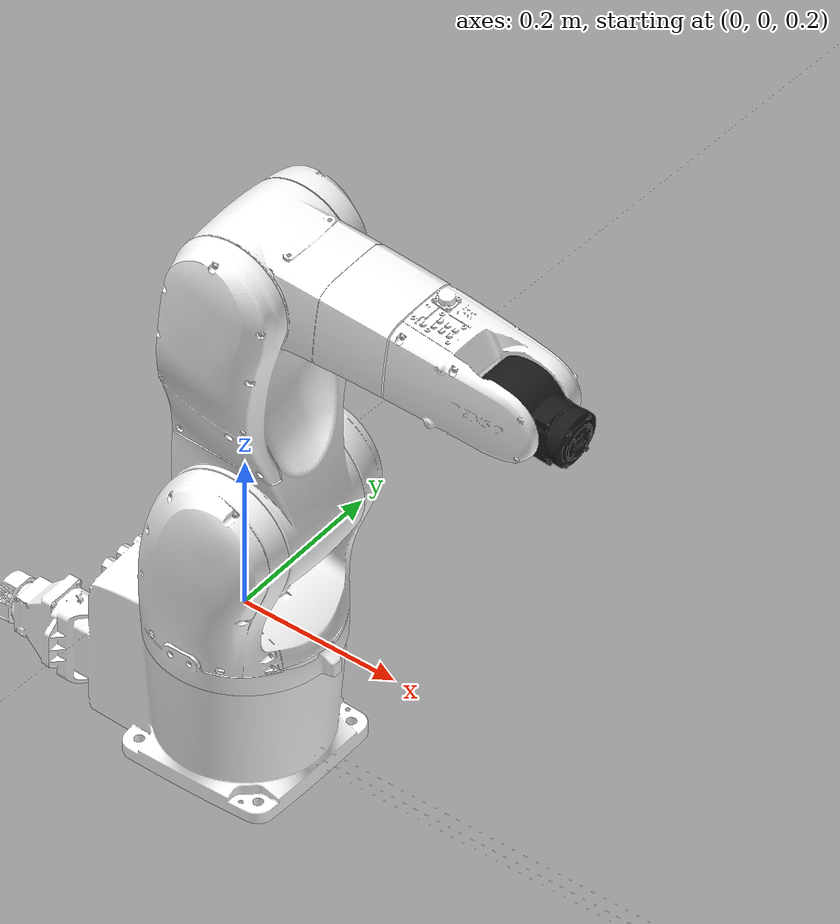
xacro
<?xml version="1.0"?>
<!-- Copyright (C) 2021, TechMagic K.K. -->
<robot name="vs068a4av6w4n" xmlns:xacro="http://www.ros.org/wiki/xacro">
  <material name="white">
    <color rgba="1.0 1.0 1.0 1.0"/>
  </material>
  <material name="grey">
    <color rgba="0.1 0.1 0.1 1.0"/>
  </material>
  <xacro:include filename="$(find denso_robot_descriptions)/vs068a4av6w4n_description/urdf/vs068a4av6w4n.xacro"/>
  <link name="base_link"/>
  <xacro:vs068a4av6w4n parent="base_link">
    <origin xyz="0 0 0" rpy="0 0 0"/>
  </xacro:vs068a4av6w4n>
</robot>

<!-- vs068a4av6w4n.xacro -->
<!-- Copyright (C) 2021, TechMagic K.K. -->
<robot xmlns:xacro="http://www.ros.org/wiki/xacro">
  <xacro:property name="folder" value="package://denso_robot_descriptions/vs068a4av6w4n_description"/>
  <xacro:macro name="vs068a4av6w4n" params="parent *origin">
    <joint name="vs068a4av6w4n_base_joint" type="fixed">
      <xacro:insert_block name="origin"/>
      <parent link="${parent}"/>
      <child link="link_0"/>
    </joint>
    <link name="link_0">
      <visual>
	<geometry>
	  <mesh filename="${folder}/mesh/vs068a4av6w4n_0.stl" scale="0.001 0.001 0.001"/>
	</geometry>
	<material name="white"/>
      </visual>
      <collision>
	<geometry>
	  <mesh filename="${folder}/mesh/vs068a4av6w4n_0.stl" scale="0.001 0.001 0.001"/>
	</geometry>
      </collision>
      <inertial>
	<mass value="1" />
	<inertia ixx="1" ixy="0" ixz="0" iyy="1" iyz="0" izz="1" />
      </inertial>
    </link>
    <joint name="joint_1" type="revolute">
      <parent link="link_0" />
      <child link="link_1" />
      <origin xyz="0 0 0.164" rpy="0 0 0"/>
      <axis xyz="0 0 1" />
      <limit effort="1" lower="-2.8797932657906435" upper="2.8797932657906435" velocity="3.92699081698724"/>
      <dynamics damping="0" friction="0" />
    </joint>
    <link name="link_1">
      <visual>
	<geometry>
	  <mesh filename="${folder}/mesh/vs068a4av6w4n_1.stl" scale="0.001 0.001 0.001"/>
	</geometry>
	<material name="white"/>
      </visual>
      <collision>
	<geometry>
	  <mesh filename="${folder}/mesh/vs068a4av6w4n_1.stl" scale="0.001 0.001 0.001"/>
	</geometry>
      </collision>
      <inertial>
	<mass value="1" />
	<inertia ixx="1" ixy="0" ixz="0" iyy="1" iyz="0" izz="1" />
      </inertial>
    </link>
    <joint name="joint_2" type="revolute">
      <parent link="link_1" />
      <child link="link_2" />
      <origin xyz="0.03 0.0 0.1975" rpy="0 0 0"/>
      <axis xyz="0 1 0" />
      <limit effort="1" lower="-0.3" upper="2.2689280275926285" velocity="2.61799387799149" />
      <dynamics damping="0" friction="0" />
    </joint>
    <link name="link_2">
      <visual>
	<geometry>
	  <mesh filename="${folder}/mesh/vs068a4av6w4n_2.stl" scale="0.001 0.001 0.001"/>
	</geometry>
	<material name="white"/>
      </visual>
      <collision>
	<geometry>
	  <mesh filename="${folder}/mesh/vs068a4av6w4n_2.stl" scale="0.001 0.001 0.001"/>
	</geometry>
      </collision>
      <inertial>
	<mass value="1" />
	<inertia ixx="1" ixy="0" ixz="0" iyy="1" iyz="0" izz="1" />
      </inertial>
    </link>
    <joint name="joint_3" type="revolute">
      <parent link="link_2" />
      <child link="link_3" />
      <origin xyz="0.0 0.0 0.340" rpy="0 0 0"/>
      <axis xyz="0 1 0" />
      <limit effort="1" lower="0.9594" upper="2.356194490192345" velocity="2.85832571599111" />
      <dynamics damping="0" friction="0" />
    </joint>
    <link name="link_3">
      <visual>
	<geometry>
	  <mesh filename="${folder}/mesh/vs068a4av6w4n_3.stl" scale="0.001 0.001 0.001"/>
	</geometry>
	<material name="white"/>
      </visual>
      <collision>
	<geometry>
	  <mesh filename="${folder}/mesh/vs068a4av6w4n_3.stl" scale="0.001 0.001 0.001"/>
	</geometry>
      </collision>
      <inertial>
	<mass value="1" />
	<inertia ixx="1" ixy="0" ixz="0" iyy="1" iyz="0" izz="1" />
      </inertial>
    </link>
    <joint name="joint_4" type="revolute">
      <parent link="link_3" />
      <child link="link_4" />
      <origin xyz="-0.020 0.000 0.197" rpy="0 0 0"/>
      <axis xyz="0 0 1" />
      <limit effort="1" lower="-2.705260340591211" upper="2.705260340591211" velocity="3.92699081698724" />
      <dynamics damping="0" friction="0" />
    </joint>
    <link name="link_4">
      <visual>
	<geometry>
	  <mesh filename="${folder}/mesh/vs068a4av6w4n_4.stl" scale="0.001 0.001 0.001"/>
	</geometry>
	<material name="white"/>
      </visual>
      <collision>
	<geometry>
	  <mesh filename="${folder}/mesh/vs068a4av6w4n_4.stl" scale="0.001 0.001 0.001"/>
	</geometry>
      </collision>
      <inertial>
	<mass value="1" />
	<inertia ixx="1" ixy="0" ixz="0" iyy="1" iyz="0" izz="1" />
      </inertial>
    </link>
    <joint name="joint_5" type="revolute">
      <parent link="link_4" />
      <child link="link_5" />
      <origin xyz="0.0 0.0 0.143" rpy="0 0 0"/>
      <axis xyz="0 1 0" />
      <limit effort="1" lower="-2.007128639793479" upper="2.007128639793479" velocity="3.02168853397778" />
      <dynamics damping="0" friction="0" />
    </joint>
    <link name="link_5">
      <visual>
	<geometry>
	  <mesh filename="${folder}/mesh/vs068a4av6w4n_5.stl" scale="0.001 0.001 0.001"/>
	</geometry>
	<material name="grey"/>
      </visual>
      <collision>
	<geometry>
	  <mesh filename="${folder}/mesh/vs068a4av6w4n_5.stl" scale="0.001 0.001 0.001"/>
	</geometry>
      </collision>
      <inertial>
	<mass value="1" />
	<inertia ixx="1" ixy="0" ixz="0" iyy="1" iyz="0" izz="1" />
      </inertial>
    </link>
    <joint name="joint_6" type="revolute">
      <parent link="link_5" />
      <child link="link_6" />
      <origin xyz="0.0 0.0 0.08" rpy="0 0 0"/>
      <axis xyz="0 0 1" />
      <limit effort="1" lower="-4.101523742186674" upper="4.101523742186674" velocity="6.28318530717959" />
      <dynamics damping="0" friction="0" />
    </joint>
    <link name="link_6">
      <inertial>
	<mass value="1" />
	<inertia ixx="1" ixy="0" ixz="0" iyy="1" iyz="0" izz="1" />
      </inertial>
    </link>
  </xacro:macro>
</robot>
